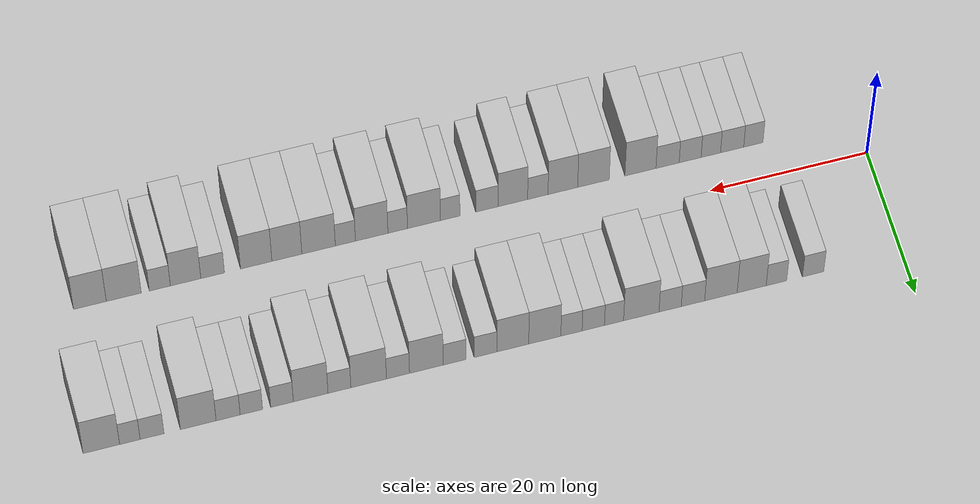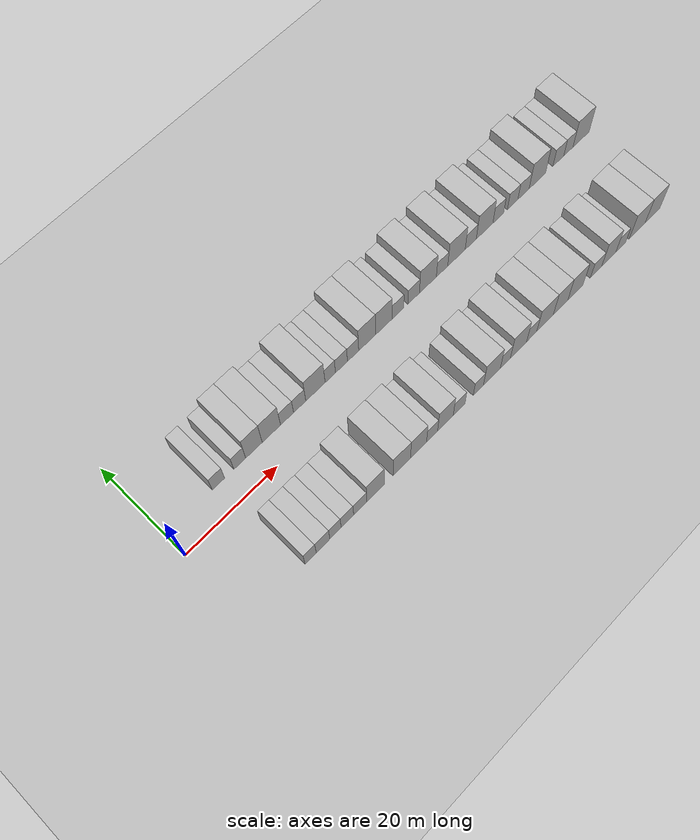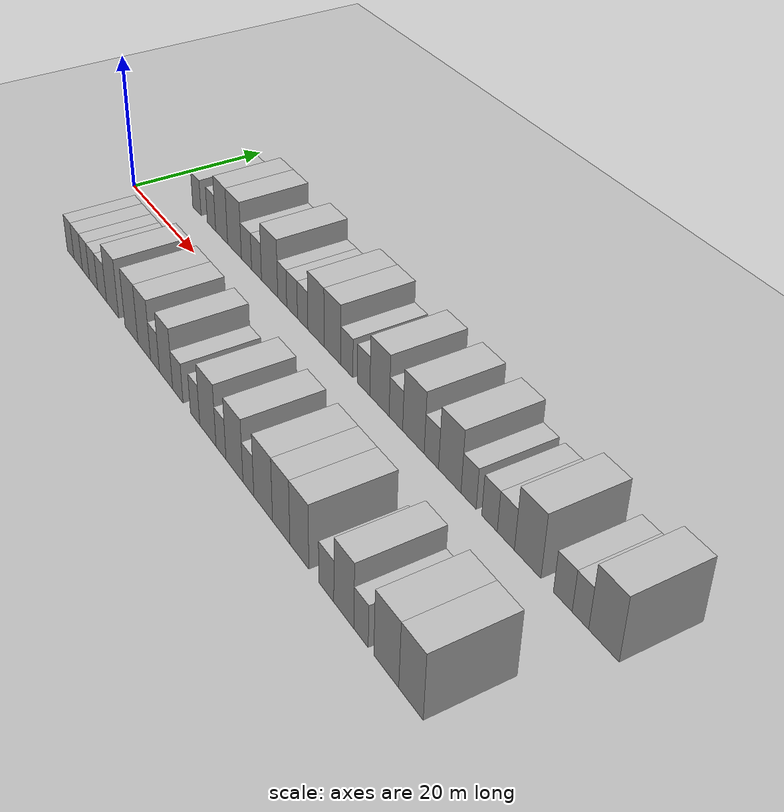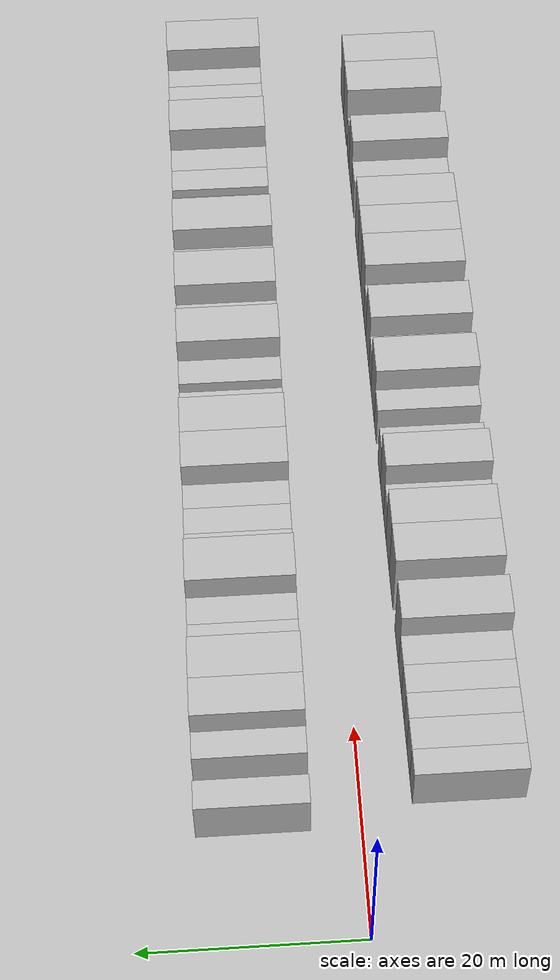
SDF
<sdf version="1.6">
 <world name="default">
  <include><name>ground_plane_1</name><uri>model://HANNAS_ground_plane</uri></include>
  <include>
   <name>ground_plane_2</name>
   <uri>model://HANNAS_ground_plane</uri>
   <pose>100 0 0  0 0 0</pose>
  </include>
  <model name="building_1">
   <static>1</static>
   <pose>11.3476 9.5000 0 0.000000 0.000000 1.570796</pose>
   <link name="link">
    <pose>0 0 3.00 0 0 0</pose>
    <collision name="collision"><geometry><box><size>10.0000 2.6953 6.0000</size></box></geometry></collision>
    <visual name="visual">
     <cast_shadows>0</cast_shadows>
     <geometry><box><size>10.0000 2.6953 6.0000</size></box></geometry>
     <material>
      <script>
       <uri>model://HANNAS_wall/materials/scripts</uri>
       <uri>model://HANNAS_wall/materials/textures</uri>
       <name>vrc/HANNAS_wall</name>
      </script>
     </material>
    </visual>
   </link>
  </model>
  <model name="building_2">
   <static>1</static>
   <pose>15.9924 9.5000 0 0.000000 0.000000 1.570796</pose>
   <link name="link">
    <pose>0 0 3.00 0 0 0</pose>
    <collision name="collision"><geometry><box><size>10.0000 2.5941 6.0000</size></box></geometry></collision>
    <visual name="visual">
     <cast_shadows>0</cast_shadows>
     <geometry><box><size>10.0000 2.5941 6.0000</size></box></geometry>
     <material>
      <script>
       <uri>model://HANNAS_wall/materials/scripts</uri>
       <uri>model://HANNAS_wall/materials/textures</uri>
       <name>vrc/HANNAS_wall</name>
      </script>
     </material>
    </visual>
   </link>
  </model>
  <model name="building_3">
   <static>1</static>
   <pose>19.1227 9.5000 0 0.000000 0.000000 1.570796</pose>
   <link name="link">
    <pose>0 0 4.50 0 0 0</pose>
    <collision name="collision"><geometry><box><size>10.0000 3.6666 9.0000</size></box></geometry></collision>
    <visual name="visual">
     <cast_shadows>0</cast_shadows>
     <geometry><box><size>10.0000 3.6666 9.0000</size></box></geometry>
     <material>
      <script>
       <uri>model://HANNAS_wall/materials/scripts</uri>
       <uri>model://HANNAS_wall/materials/textures</uri>
       <name>vrc/HANNAS_wall</name>
      </script>
     </material>
    </visual>
   </link>
  </model>
  <model name="building_4">
   <static>1</static>
   <pose>23.0033 9.5000 0 0.000000 0.000000 1.570796</pose>
   <link name="link">
    <pose>0 0 4.50 0 0 0</pose>
    <collision name="collision"><geometry><box><size>10.0000 4.0947 9.0000</size></box></geometry></collision>
    <visual name="visual">
     <cast_shadows>0</cast_shadows>
     <geometry><box><size>10.0000 4.0947 9.0000</size></box></geometry>
     <material>
      <script>
       <uri>model://HANNAS_wall/materials/scripts</uri>
       <uri>model://HANNAS_wall/materials/textures</uri>
       <name>vrc/HANNAS_wall</name>
      </script>
     </material>
    </visual>
   </link>
  </model>
  <model name="building_5">
   <static>1</static>
   <pose>26.5268 9.5000 0 0.000000 0.000000 1.570796</pose>
   <link name="link">
    <pose>0 0 3.00 0 0 0</pose>
    <collision name="collision"><geometry><box><size>10.0000 2.9523 6.0000</size></box></geometry></collision>
    <visual name="visual">
     <cast_shadows>0</cast_shadows>
     <geometry><box><size>10.0000 2.9523 6.0000</size></box></geometry>
     <material>
      <script>
       <uri>model://HANNAS_wall/materials/scripts</uri>
       <uri>model://HANNAS_wall/materials/textures</uri>
       <name>vrc/HANNAS_wall</name>
      </script>
     </material>
    </visual>
   </link>
  </model>
  <model name="building_6">
   <static>1</static>
   <pose>29.4002 9.5000 0 0.000000 0.000000 1.570796</pose>
   <link name="link">
    <pose>0 0 3.00 0 0 0</pose>
    <collision name="collision"><geometry><box><size>10.0000 2.7946 6.0000</size></box></geometry></collision>
    <visual name="visual">
     <cast_shadows>0</cast_shadows>
     <geometry><box><size>10.0000 2.7946 6.0000</size></box></geometry>
     <material>
      <script>
       <uri>model://HANNAS_wall/materials/scripts</uri>
       <uri>model://HANNAS_wall/materials/textures</uri>
       <name>vrc/HANNAS_wall</name>
      </script>
     </material>
    </visual>
   </link>
  </model>
  <model name="building_7">
   <static>1</static>
   <pose>33.0232 9.5000 0 0.000000 0.000000 1.570796</pose>
   <link name="link">
    <pose>0 0 4.50 0 0 0</pose>
    <collision name="collision"><geometry><box><size>10.0000 4.4512 9.0000</size></box></geometry></collision>
    <visual name="visual">
     <cast_shadows>0</cast_shadows>
     <geometry><box><size>10.0000 4.4512 9.0000</size></box></geometry>
     <material>
      <script>
       <uri>model://HANNAS_wall/materials/scripts</uri>
       <uri>model://HANNAS_wall/materials/textures</uri>
       <name>vrc/HANNAS_wall</name>
      </script>
     </material>
    </visual>
   </link>
  </model>
  <model name="building_8">
   <static>1</static>
   <pose>36.4513 9.5000 0 0.000000 0.000000 1.570796</pose>
   <link name="link">
    <pose>0 0 3.00 0 0 0</pose>
    <collision name="collision"><geometry><box><size>10.0000 2.4051 6.0000</size></box></geometry></collision>
    <visual name="visual">
     <cast_shadows>0</cast_shadows>
     <geometry><box><size>10.0000 2.4051 6.0000</size></box></geometry>
     <material>
      <script>
       <uri>model://HANNAS_wall/materials/scripts</uri>
       <uri>model://HANNAS_wall/materials/textures</uri>
       <name>vrc/HANNAS_wall</name>
      </script>
     </material>
    </visual>
   </link>
  </model>
  <model name="building_9">
   <static>1</static>
   <pose>39.0521 9.5000 0 0.000000 0.000000 1.570796</pose>
   <link name="link">
    <pose>0 0 3.00 0 0 0</pose>
    <collision name="collision"><geometry><box><size>10.0000 2.7965 6.0000</size></box></geometry></collision>
    <visual name="visual">
     <cast_shadows>0</cast_shadows>
     <geometry><box><size>10.0000 2.7965 6.0000</size></box></geometry>
     <material>
      <script>
       <uri>model://HANNAS_wall/materials/scripts</uri>
       <uri>model://HANNAS_wall/materials/textures</uri>
       <name>vrc/HANNAS_wall</name>
      </script>
     </material>
    </visual>
   </link>
  </model>
  <model name="building_10">
   <static>1</static>
   <pose>41.7821 9.5000 0 0.000000 0.000000 1.570796</pose>
   <link name="link">
    <pose>0 0 3.00 0 0 0</pose>
    <collision name="collision"><geometry><box><size>10.0000 2.6635 6.0000</size></box></geometry></collision>
    <visual name="visual">
     <cast_shadows>0</cast_shadows>
     <geometry><box><size>10.0000 2.6635 6.0000</size></box></geometry>
     <material>
      <script>
       <uri>model://HANNAS_wall/materials/scripts</uri>
       <uri>model://HANNAS_wall/materials/textures</uri>
       <name>vrc/HANNAS_wall</name>
      </script>
     </material>
    </visual>
   </link>
  </model>
  <model name="building_11">
   <static>1</static>
   <pose>45.1213 9.5000 0 0.000000 0.000000 1.570796</pose>
   <link name="link">
    <pose>0 0 4.50 0 0 0</pose>
    <collision name="collision"><geometry><box><size>10.0000 4.0150 9.0000</size></box></geometry></collision>
    <visual name="visual">
     <cast_shadows>0</cast_shadows>
     <geometry><box><size>10.0000 4.0150 9.0000</size></box></geometry>
     <material>
      <script>
       <uri>model://HANNAS_wall/materials/scripts</uri>
       <uri>model://HANNAS_wall/materials/textures</uri>
       <name>vrc/HANNAS_wall</name>
      </script>
     </material>
    </visual>
   </link>
  </model>
  <model name="building_12">
   <static>1</static>
   <pose>49.1280 9.5000 0 0.000000 0.000000 1.570796</pose>
   <link name="link">
    <pose>0 0 4.50 0 0 0</pose>
    <collision name="collision"><geometry><box><size>10.0000 3.9984 9.0000</size></box></geometry></collision>
    <visual name="visual">
     <cast_shadows>0</cast_shadows>
     <geometry><box><size>10.0000 3.9984 9.0000</size></box></geometry>
     <material>
      <script>
       <uri>model://HANNAS_wall/materials/scripts</uri>
       <uri>model://HANNAS_wall/materials/textures</uri>
       <name>vrc/HANNAS_wall</name>
      </script>
     </material>
    </visual>
   </link>
  </model>
  <model name="building_13">
   <static>1</static>
   <pose>52.5361 9.5000 0 0.000000 0.000000 1.570796</pose>
   <link name="link">
    <pose>0 0 3.00 0 0 0</pose>
    <collision name="collision"><geometry><box><size>10.0000 2.8178 6.0000</size></box></geometry></collision>
    <visual name="visual">
     <cast_shadows>0</cast_shadows>
     <geometry><box><size>10.0000 2.8178 6.0000</size></box></geometry>
     <material>
      <script>
       <uri>model://HANNAS_wall/materials/scripts</uri>
       <uri>model://HANNAS_wall/materials/textures</uri>
       <name>vrc/HANNAS_wall</name>
      </script>
     </material>
    </visual>
   </link>
  </model>
  <model name="building_14">
   <static>1</static>
   <pose>56.3678 9.5000 0 0.000000 0.000000 1.570796</pose>
   <link name="link">
    <pose>0 0 3.00 0 0 0</pose>
    <collision name="collision"><geometry><box><size>10.0000 2.8456 6.0000</size></box></geometry></collision>
    <visual name="visual">
     <cast_shadows>0</cast_shadows>
     <geometry><box><size>10.0000 2.8456 6.0000</size></box></geometry>
     <material>
      <script>
       <uri>model://HANNAS_wall/materials/scripts</uri>
       <uri>model://HANNAS_wall/materials/textures</uri>
       <name>vrc/HANNAS_wall</name>
      </script>
     </material>
    </visual>
   </link>
  </model>
  <model name="building_15">
   <static>1</static>
   <pose>59.8901 9.5000 0 0.000000 0.000000 1.570796</pose>
   <link name="link">
    <pose>0 0 4.50 0 0 0</pose>
    <collision name="collision"><geometry><box><size>10.0000 4.1991 9.0000</size></box></geometry></collision>
    <visual name="visual">
     <cast_shadows>0</cast_shadows>
     <geometry><box><size>10.0000 4.1991 9.0000</size></box></geometry>
     <material>
      <script>
       <uri>model://HANNAS_wall/materials/scripts</uri>
       <uri>model://HANNAS_wall/materials/textures</uri>
       <name>vrc/HANNAS_wall</name>
      </script>
     </material>
    </visual>
   </link>
  </model>
  <model name="building_16">
   <static>1</static>
   <pose>63.4212 9.5000 0 0.000000 0.000000 1.570796</pose>
   <link name="link">
    <pose>0 0 3.00 0 0 0</pose>
    <collision name="collision"><geometry><box><size>10.0000 2.8630 6.0000</size></box></geometry></collision>
    <visual name="visual">
     <cast_shadows>0</cast_shadows>
     <geometry><box><size>10.0000 2.8630 6.0000</size></box></geometry>
     <material>
      <script>
       <uri>model://HANNAS_wall/materials/scripts</uri>
       <uri>model://HANNAS_wall/materials/textures</uri>
       <name>vrc/HANNAS_wall</name>
      </script>
     </material>
    </visual>
   </link>
  </model>
  <model name="building_17">
   <static>1</static>
   <pose>67.0569 9.5000 0 0.000000 0.000000 1.570796</pose>
   <link name="link">
    <pose>0 0 4.50 0 0 0</pose>
    <collision name="collision"><geometry><box><size>10.0000 4.4085 9.0000</size></box></geometry></collision>
    <visual name="visual">
     <cast_shadows>0</cast_shadows>
     <geometry><box><size>10.0000 4.4085 9.0000</size></box></geometry>
     <material>
      <script>
       <uri>model://HANNAS_wall/materials/scripts</uri>
       <uri>model://HANNAS_wall/materials/textures</uri>
       <name>vrc/HANNAS_wall</name>
      </script>
     </material>
    </visual>
   </link>
  </model>
  <model name="building_18">
   <static>1</static>
   <pose>70.6775 9.5000 0 0.000000 0.000000 1.570796</pose>
   <link name="link">
    <pose>0 0 3.00 0 0 0</pose>
    <collision name="collision"><geometry><box><size>10.0000 2.8328 6.0000</size></box></geometry></collision>
    <visual name="visual">
     <cast_shadows>0</cast_shadows>
     <geometry><box><size>10.0000 2.8328 6.0000</size></box></geometry>
     <material>
      <script>
       <uri>model://HANNAS_wall/materials/scripts</uri>
       <uri>model://HANNAS_wall/materials/textures</uri>
       <name>vrc/HANNAS_wall</name>
      </script>
     </material>
    </visual>
   </link>
  </model>
  <model name="building_19">
   <static>1</static>
   <pose>74.2370 9.5000 0 0.000000 0.000000 1.570796</pose>
   <link name="link">
    <pose>0 0 4.50 0 0 0</pose>
    <collision name="collision"><geometry><box><size>10.0000 4.2862 9.0000</size></box></geometry></collision>
    <visual name="visual">
     <cast_shadows>0</cast_shadows>
     <geometry><box><size>10.0000 4.2862 9.0000</size></box></geometry>
     <material>
      <script>
       <uri>model://HANNAS_wall/materials/scripts</uri>
       <uri>model://HANNAS_wall/materials/textures</uri>
       <name>vrc/HANNAS_wall</name>
      </script>
     </material>
    </visual>
   </link>
  </model>
  <model name="building_20">
   <static>1</static>
   <pose>77.7793 9.5000 0 0.000000 0.000000 1.570796</pose>
   <link name="link">
    <pose>0 0 3.00 0 0 0</pose>
    <collision name="collision"><geometry><box><size>10.0000 2.7983 6.0000</size></box></geometry></collision>
    <visual name="visual">
     <cast_shadows>0</cast_shadows>
     <geometry><box><size>10.0000 2.7983 6.0000</size></box></geometry>
     <material>
      <script>
       <uri>model://HANNAS_wall/materials/scripts</uri>
       <uri>model://HANNAS_wall/materials/textures</uri>
       <name>vrc/HANNAS_wall</name>
      </script>
     </material>
    </visual>
   </link>
  </model>
  <model name="building_21">
   <static>1</static>
   <pose>81.5589 9.5000 0 0.000000 0.000000 1.570796</pose>
   <link name="link">
    <pose>0 0 3.00 0 0 0</pose>
    <collision name="collision"><geometry><box><size>10.0000 2.7608 6.0000</size></box></geometry></collision>
    <visual name="visual">
     <cast_shadows>0</cast_shadows>
     <geometry><box><size>10.0000 2.7608 6.0000</size></box></geometry>
     <material>
      <script>
       <uri>model://HANNAS_wall/materials/scripts</uri>
       <uri>model://HANNAS_wall/materials/textures</uri>
       <name>vrc/HANNAS_wall</name>
      </script>
     </material>
    </visual>
   </link>
  </model>
  <model name="building_22">
   <static>1</static>
   <pose>84.4221 9.5000 0 0.000000 0.000000 1.570796</pose>
   <link name="link">
    <pose>0 0 3.00 0 0 0</pose>
    <collision name="collision"><geometry><box><size>10.0000 2.9657 6.0000</size></box></geometry></collision>
    <visual name="visual">
     <cast_shadows>0</cast_shadows>
     <geometry><box><size>10.0000 2.9657 6.0000</size></box></geometry>
     <material>
      <script>
       <uri>model://HANNAS_wall/materials/scripts</uri>
       <uri>model://HANNAS_wall/materials/textures</uri>
       <name>vrc/HANNAS_wall</name>
      </script>
     </material>
    </visual>
   </link>
  </model>
  <model name="building_23">
   <static>1</static>
   <pose>88.1063 9.5000 0 0.000000 0.000000 1.570796</pose>
   <link name="link">
    <pose>0 0 4.50 0 0 0</pose>
    <collision name="collision"><geometry><box><size>10.0000 4.4028 9.0000</size></box></geometry></collision>
    <visual name="visual">
     <cast_shadows>0</cast_shadows>
     <geometry><box><size>10.0000 4.4028 9.0000</size></box></geometry>
     <material>
      <script>
       <uri>model://HANNAS_wall/materials/scripts</uri>
       <uri>model://HANNAS_wall/materials/textures</uri>
       <name>vrc/HANNAS_wall</name>
      </script>
     </material>
    </visual>
   </link>
  </model>
  <model name="building_24">
   <static>1</static>
   <pose>93.7768 9.5000 0 0.000000 0.000000 1.570796</pose>
   <link name="link">
    <pose>0 0 3.00 0 0 0</pose>
    <collision name="collision"><geometry><box><size>10.0000 2.9382 6.0000</size></box></geometry></collision>
    <visual name="visual">
     <cast_shadows>0</cast_shadows>
     <geometry><box><size>10.0000 2.9382 6.0000</size></box></geometry>
     <material>
      <script>
       <uri>model://HANNAS_wall/materials/scripts</uri>
       <uri>model://HANNAS_wall/materials/textures</uri>
       <name>vrc/HANNAS_wall</name>
      </script>
     </material>
    </visual>
   </link>
  </model>
  <model name="building_25">
   <static>1</static>
   <pose>96.4989 9.5000 0 0.000000 0.000000 1.570796</pose>
   <link name="link">
    <pose>0 0 3.00 0 0 0</pose>
    <collision name="collision"><geometry><box><size>10.0000 2.5060 6.0000</size></box></geometry></collision>
    <visual name="visual">
     <cast_shadows>0</cast_shadows>
     <geometry><box><size>10.0000 2.5060 6.0000</size></box></geometry>
     <material>
      <script>
       <uri>model://HANNAS_wall/materials/scripts</uri>
       <uri>model://HANNAS_wall/materials/textures</uri>
       <name>vrc/HANNAS_wall</name>
      </script>
     </material>
    </visual>
   </link>
  </model>
  <model name="building_26">
   <static>1</static>
   <pose>99.9902 9.5000 0 0.000000 0.000000 1.570796</pose>
   <link name="link">
    <pose>0 0 4.50 0 0 0</pose>
    <collision name="collision"><geometry><box><size>10.0000 4.4765 9.0000</size></box></geometry></collision>
    <visual name="visual">
     <cast_shadows>0</cast_shadows>
     <geometry><box><size>10.0000 4.4765 9.0000</size></box></geometry>
     <material>
      <script>
       <uri>model://HANNAS_wall/materials/scripts</uri>
       <uri>model://HANNAS_wall/materials/textures</uri>
       <name>vrc/HANNAS_wall</name>
      </script>
     </material>
    </visual>
   </link>
  </model>
  <model name="building_54">
   <static>1</static>
   <pose>13.2302 -9.5000 0 0.000000 0.000000 1.570796</pose>
   <link name="link">
    <pose>0 0 3.00 0 0 0</pose>
    <collision name="collision"><geometry><box><size>10.0000 2.4605 6.0000</size></box></geometry></collision>
    <visual name="visual">
     <cast_shadows>0</cast_shadows>
     <geometry><box><size>10.0000 2.4605 6.0000</size></box></geometry>
     <material>
      <script>
       <uri>model://HANNAS_wall/materials/scripts</uri>
       <uri>model://HANNAS_wall/materials/textures</uri>
       <name>vrc/HANNAS_wall</name>
      </script>
     </material>
    </visual>
   </link>
  </model>
  <model name="building_55">
   <static>1</static>
   <pose>15.9497 -9.5000 0 0.000000 0.000000 1.570796</pose>
   <link name="link">
    <pose>0 0 3.00 0 0 0</pose>
    <collision name="collision"><geometry><box><size>10.0000 2.9785 6.0000</size></box></geometry></collision>
    <visual name="visual">
     <cast_shadows>0</cast_shadows>
     <geometry><box><size>10.0000 2.9785 6.0000</size></box></geometry>
     <material>
      <script>
       <uri>model://HANNAS_wall/materials/scripts</uri>
       <uri>model://HANNAS_wall/materials/textures</uri>
       <name>vrc/HANNAS_wall</name>
      </script>
     </material>
    </visual>
   </link>
  </model>
  <model name="building_56">
   <static>1</static>
   <pose>18.6814 -9.5000 0 0.000000 0.000000 1.570796</pose>
   <link name="link">
    <pose>0 0 3.00 0 0 0</pose>
    <collision name="collision"><geometry><box><size>10.0000 2.4847 6.0000</size></box></geometry></collision>
    <visual name="visual">
     <cast_shadows>0</cast_shadows>
     <geometry><box><size>10.0000 2.4847 6.0000</size></box></geometry>
     <material>
      <script>
       <uri>model://HANNAS_wall/materials/scripts</uri>
       <uri>model://HANNAS_wall/materials/textures</uri>
       <name>vrc/HANNAS_wall</name>
      </script>
     </material>
    </visual>
   </link>
  </model>
  <model name="building_57">
   <static>1</static>
   <pose>21.3229 -9.5000 0 0.000000 0.000000 1.570796</pose>
   <link name="link">
    <pose>0 0 3.00 0 0 0</pose>
    <collision name="collision"><geometry><box><size>10.0000 2.7983 6.0000</size></box></geometry></collision>
    <visual name="visual">
     <cast_shadows>0</cast_shadows>
     <geometry><box><size>10.0000 2.7983 6.0000</size></box></geometry>
     <material>
      <script>
       <uri>model://HANNAS_wall/materials/scripts</uri>
       <uri>model://HANNAS_wall/materials/textures</uri>
       <name>vrc/HANNAS_wall</name>
      </script>
     </material>
    </visual>
   </link>
  </model>
  <model name="building_58">
   <static>1</static>
   <pose>24.2023 -9.5000 0 0.000000 0.000000 1.570796</pose>
   <link name="link">
    <pose>0 0 3.00 0 0 0</pose>
    <collision name="collision"><geometry><box><size>10.0000 2.9605 6.0000</size></box></geometry></collision>
    <visual name="visual">
     <cast_shadows>0</cast_shadows>
     <geometry><box><size>10.0000 2.9605 6.0000</size></box></geometry>
     <material>
      <script>
       <uri>model://HANNAS_wall/materials/scripts</uri>
       <uri>model://HANNAS_wall/materials/textures</uri>
       <name>vrc/HANNAS_wall</name>
      </script>
     </material>
    </visual>
   </link>
  </model>
  <model name="building_59">
   <static>1</static>
   <pose>27.6649 -9.5000 0 0.000000 0.000000 1.570796</pose>
   <link name="link">
    <pose>0 0 4.50 0 0 0</pose>
    <collision name="collision"><geometry><box><size>10.0000 3.9648 9.0000</size></box></geometry></collision>
    <visual name="visual">
     <cast_shadows>0</cast_shadows>
     <geometry><box><size>10.0000 3.9648 9.0000</size></box></geometry>
     <material>
      <script>
       <uri>model://HANNAS_wall/materials/scripts</uri>
       <uri>model://HANNAS_wall/materials/textures</uri>
       <name>vrc/HANNAS_wall</name>
      </script>
     </material>
    </visual>
   </link>
  </model>
  <model name="building_60">
   <static>1</static>
   <pose>33.6532 -9.5000 0 0.000000 0.000000 1.570796</pose>
   <link name="link">
    <pose>0 0 4.50 0 0 0</pose>
    <collision name="collision"><geometry><box><size>10.0000 4.0117 9.0000</size></box></geometry></collision>
    <visual name="visual">
     <cast_shadows>0</cast_shadows>
     <geometry><box><size>10.0000 4.0117 9.0000</size></box></geometry>
     <material>
      <script>
       <uri>model://HANNAS_wall/materials/scripts</uri>
       <uri>model://HANNAS_wall/materials/textures</uri>
       <name>vrc/HANNAS_wall</name>
      </script>
     </material>
    </visual>
   </link>
  </model>
  <model name="building_61">
   <static>1</static>
   <pose>37.5414 -9.5000 0 0.000000 0.000000 1.570796</pose>
   <link name="link">
    <pose>0 0 4.50 0 0 0</pose>
    <collision name="collision"><geometry><box><size>10.0000 3.7647 9.0000</size></box></geometry></collision>
    <visual name="visual">
     <cast_shadows>0</cast_shadows>
     <geometry><box><size>10.0000 3.7647 9.0000</size></box></geometry>
     <material>
      <script>
       <uri>model://HANNAS_wall/materials/scripts</uri>
       <uri>model://HANNAS_wall/materials/textures</uri>
       <name>vrc/HANNAS_wall</name>
      </script>
     </material>
    </visual>
   </link>
  </model>
  <model name="building_62">
   <static>1</static>
   <pose>40.7158 -9.5000 0 0.000000 0.000000 1.570796</pose>
   <link name="link">
    <pose>0 0 3.00 0 0 0</pose>
    <collision name="collision"><geometry><box><size>10.0000 2.5841 6.0000</size></box></geometry></collision>
    <visual name="visual">
     <cast_shadows>0</cast_shadows>
     <geometry><box><size>10.0000 2.5841 6.0000</size></box></geometry>
     <material>
      <script>
       <uri>model://HANNAS_wall/materials/scripts</uri>
       <uri>model://HANNAS_wall/materials/textures</uri>
       <name>vrc/HANNAS_wall</name>
      </script>
     </material>
    </visual>
   </link>
  </model>
  <model name="building_63">
   <static>1</static>
   <pose>43.8744 -9.5000 0 0.000000 0.000000 1.570796</pose>
   <link name="link">
    <pose>0 0 4.50 0 0 0</pose>
    <collision name="collision"><geometry><box><size>10.0000 3.7330 9.0000</size></box></geometry></collision>
    <visual name="visual">
     <cast_shadows>0</cast_shadows>
     <geometry><box><size>10.0000 3.7330 9.0000</size></box></geometry>
     <material>
      <script>
       <uri>model://HANNAS_wall/materials/scripts</uri>
       <uri>model://HANNAS_wall/materials/textures</uri>
       <name>vrc/HANNAS_wall</name>
      </script>
     </material>
    </visual>
   </link>
  </model>
  <model name="building_64">
   <static>1</static>
   <pose>47.1593 -9.5000 0 0.000000 0.000000 1.570796</pose>
   <link name="link">
    <pose>0 0 3.00 0 0 0</pose>
    <collision name="collision"><geometry><box><size>10.0000 2.8369 6.0000</size></box></geometry></collision>
    <visual name="visual">
     <cast_shadows>0</cast_shadows>
     <geometry><box><size>10.0000 2.8369 6.0000</size></box></geometry>
     <material>
      <script>
       <uri>model://HANNAS_wall/materials/scripts</uri>
       <uri>model://HANNAS_wall/materials/textures</uri>
       <name>vrc/HANNAS_wall</name>
      </script>
     </material>
    </visual>
   </link>
  </model>
  <model name="building_65">
   <static>1</static>
   <pose>51.8073 -9.5000 0 0.000000 0.000000 1.570796</pose>
   <link name="link">
    <pose>0 0 3.00 0 0 0</pose>
    <collision name="collision"><geometry><box><size>10.0000 2.4590 6.0000</size></box></geometry></collision>
    <visual name="visual">
     <cast_shadows>0</cast_shadows>
     <geometry><box><size>10.0000 2.4590 6.0000</size></box></geometry>
     <material>
      <script>
       <uri>model://HANNAS_wall/materials/scripts</uri>
       <uri>model://HANNAS_wall/materials/textures</uri>
       <name>vrc/HANNAS_wall</name>
      </script>
     </material>
    </visual>
   </link>
  </model>
  <model name="building_66">
   <static>1</static>
   <pose>55.1161 -9.5000 0 0.000000 0.000000 1.570796</pose>
   <link name="link">
    <pose>0 0 4.50 0 0 0</pose>
    <collision name="collision"><geometry><box><size>10.0000 4.1585 9.0000</size></box></geometry></collision>
    <visual name="visual">
     <cast_shadows>0</cast_shadows>
     <geometry><box><size>10.0000 4.1585 9.0000</size></box></geometry>
     <material>
      <script>
       <uri>model://HANNAS_wall/materials/scripts</uri>
       <uri>model://HANNAS_wall/materials/textures</uri>
       <name>vrc/HANNAS_wall</name>
      </script>
     </material>
    </visual>
   </link>
  </model>
  <model name="building_67">
   <static>1</static>
   <pose>58.4267 -9.5000 0 0.000000 0.000000 1.570796</pose>
   <link name="link">
    <pose>0 0 3.00 0 0 0</pose>
    <collision name="collision"><geometry><box><size>10.0000 2.4628 6.0000</size></box></geometry></collision>
    <visual name="visual">
     <cast_shadows>0</cast_shadows>
     <geometry><box><size>10.0000 2.4628 6.0000</size></box></geometry>
     <material>
      <script>
       <uri>model://HANNAS_wall/materials/scripts</uri>
       <uri>model://HANNAS_wall/materials/textures</uri>
       <name>vrc/HANNAS_wall</name>
      </script>
     </material>
    </visual>
   </link>
  </model>
  <model name="building_68">
   <static>1</static>
   <pose>61.7032 -9.5000 0 0.000000 0.000000 1.570796</pose>
   <link name="link">
    <pose>0 0 4.50 0 0 0</pose>
    <collision name="collision"><geometry><box><size>10.0000 4.0901 9.0000</size></box></geometry></collision>
    <visual name="visual">
     <cast_shadows>0</cast_shadows>
     <geometry><box><size>10.0000 4.0901 9.0000</size></box></geometry>
     <material>
      <script>
       <uri>model://HANNAS_wall/materials/scripts</uri>
       <uri>model://HANNAS_wall/materials/textures</uri>
       <name>vrc/HANNAS_wall</name>
      </script>
     </material>
    </visual>
   </link>
  </model>
  <model name="building_69">
   <static>1</static>
   <pose>65.0121 -9.5000 0 0.000000 0.000000 1.570796</pose>
   <link name="link">
    <pose>0 0 3.00 0 0 0</pose>
    <collision name="collision"><geometry><box><size>10.0000 2.5279 6.0000</size></box></geometry></collision>
    <visual name="visual">
     <cast_shadows>0</cast_shadows>
     <geometry><box><size>10.0000 2.5279 6.0000</size></box></geometry>
     <material>
      <script>
       <uri>model://HANNAS_wall/materials/scripts</uri>
       <uri>model://HANNAS_wall/materials/textures</uri>
       <name>vrc/HANNAS_wall</name>
      </script>
     </material>
    </visual>
   </link>
  </model>
  <model name="building_70">
   <static>1</static>
   <pose>68.3789 -9.5000 0 0.000000 0.000000 1.570796</pose>
   <link name="link">
    <pose>0 0 4.50 0 0 0</pose>
    <collision name="collision"><geometry><box><size>10.0000 4.2057 9.0000</size></box></geometry></collision>
    <visual name="visual">
     <cast_shadows>0</cast_shadows>
     <geometry><box><size>10.0000 4.2057 9.0000</size></box></geometry>
     <material>
      <script>
       <uri>model://HANNAS_wall/materials/scripts</uri>
       <uri>model://HANNAS_wall/materials/textures</uri>
       <name>vrc/HANNAS_wall</name>
      </script>
     </material>
    </visual>
   </link>
  </model>
  <model name="building_71">
   <static>1</static>
   <pose>72.3562 -9.5000 0 0.000000 0.000000 1.570796</pose>
   <link name="link">
    <pose>0 0 4.50 0 0 0</pose>
    <collision name="collision"><geometry><box><size>10.0000 3.7487 9.0000</size></box></geometry></collision>
    <visual name="visual">
     <cast_shadows>0</cast_shadows>
     <geometry><box><size>10.0000 3.7487 9.0000</size></box></geometry>
     <material>
      <script>
       <uri>model://HANNAS_wall/materials/scripts</uri>
       <uri>model://HANNAS_wall/materials/textures</uri>
       <name>vrc/HANNAS_wall</name>
      </script>
     </material>
    </visual>
   </link>
  </model>
  <model name="building_72">
   <static>1</static>
   <pose>76.1979 -9.5000 0 0.000000 0.000000 1.570796</pose>
   <link name="link">
    <pose>0 0 4.50 0 0 0</pose>
    <collision name="collision"><geometry><box><size>10.0000 3.9348 9.0000</size></box></geometry></collision>
    <visual name="visual">
     <cast_shadows>0</cast_shadows>
     <geometry><box><size>10.0000 3.9348 9.0000</size></box></geometry>
     <material>
      <script>
       <uri>model://HANNAS_wall/materials/scripts</uri>
       <uri>model://HANNAS_wall/materials/textures</uri>
       <name>vrc/HANNAS_wall</name>
      </script>
     </material>
    </visual>
   </link>
  </model>
  <model name="building_73">
   <static>1</static>
   <pose>81.6415 -9.5000 0 0.000000 0.000000 1.570796</pose>
   <link name="link">
    <pose>0 0 3.00 0 0 0</pose>
    <collision name="collision"><geometry><box><size>10.0000 2.9523 6.0000</size></box></geometry></collision>
    <visual name="visual">
     <cast_shadows>0</cast_shadows>
     <geometry><box><size>10.0000 2.9523 6.0000</size></box></geometry>
     <material>
      <script>
       <uri>model://HANNAS_wall/materials/scripts</uri>
       <uri>model://HANNAS_wall/materials/textures</uri>
       <name>vrc/HANNAS_wall</name>
      </script>
     </material>
    </visual>
   </link>
  </model>
  <model name="building_74">
   <static>1</static>
   <pose>85.0140 -9.5000 0 0.000000 0.000000 1.570796</pose>
   <link name="link">
    <pose>0 0 4.50 0 0 0</pose>
    <collision name="collision"><geometry><box><size>10.0000 3.7928 9.0000</size></box></geometry></collision>
    <visual name="visual">
     <cast_shadows>0</cast_shadows>
     <geometry><box><size>10.0000 3.7928 9.0000</size></box></geometry>
     <material>
      <script>
       <uri>model://HANNAS_wall/materials/scripts</uri>
       <uri>model://HANNAS_wall/materials/textures</uri>
       <name>vrc/HANNAS_wall</name>
      </script>
     </material>
    </visual>
   </link>
  </model>
  <model name="building_75">
   <static>1</static>
   <pose>88.2238 -9.5000 0 0.000000 0.000000 1.570796</pose>
   <link name="link">
    <pose>0 0 3.00 0 0 0</pose>
    <collision name="collision"><geometry><box><size>10.0000 2.6268 6.0000</size></box></geometry></collision>
    <visual name="visual">
     <cast_shadows>0</cast_shadows>
     <geometry><box><size>10.0000 2.6268 6.0000</size></box></geometry>
     <material>
      <script>
       <uri>model://HANNAS_wall/materials/scripts</uri>
       <uri>model://HANNAS_wall/materials/textures</uri>
       <name>vrc/HANNAS_wall</name>
      </script>
     </material>
    </visual>
   </link>
  </model>
  <model name="building_76">
   <static>1</static>
   <pose>92.7125 -9.5000 0 0.000000 0.000000 1.570796</pose>
   <link name="link">
    <pose>0 0 4.50 0 0 0</pose>
    <collision name="collision"><geometry><box><size>10.0000 4.3506 9.0000</size></box></geometry></collision>
    <visual name="visual">
     <cast_shadows>0</cast_shadows>
     <geometry><box><size>10.0000 4.3506 9.0000</size></box></geometry>
     <material>
      <script>
       <uri>model://HANNAS_wall/materials/scripts</uri>
       <uri>model://HANNAS_wall/materials/textures</uri>
       <name>vrc/HANNAS_wall</name>
      </script>
     </material>
    </visual>
   </link>
  </model>
  <model name="building_77">
   <static>1</static>
   <pose>96.9216 -9.5000 0 0.000000 0.000000 1.570796</pose>
   <link name="link">
    <pose>0 0 4.50 0 0 0</pose>
    <collision name="collision"><geometry><box><size>10.0000 4.0675 9.0000</size></box></geometry></collision>
    <visual name="visual">
     <cast_shadows>0</cast_shadows>
     <geometry><box><size>10.0000 4.0675 9.0000</size></box></geometry>
     <material>
      <script>
       <uri>model://HANNAS_wall/materials/scripts</uri>
       <uri>model://HANNAS_wall/materials/textures</uri>
       <name>vrc/HANNAS_wall</name>
      </script>
     </material>
    </visual>
   </link>
  </model>
 </world>
</sdf>
